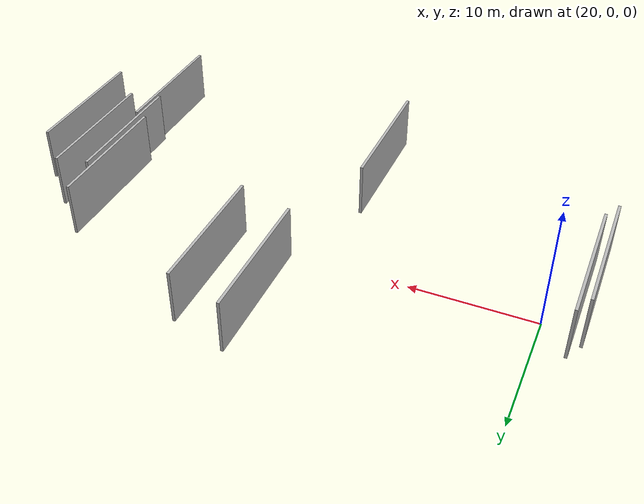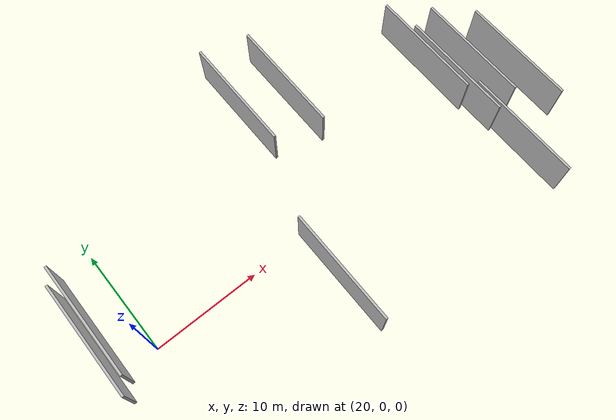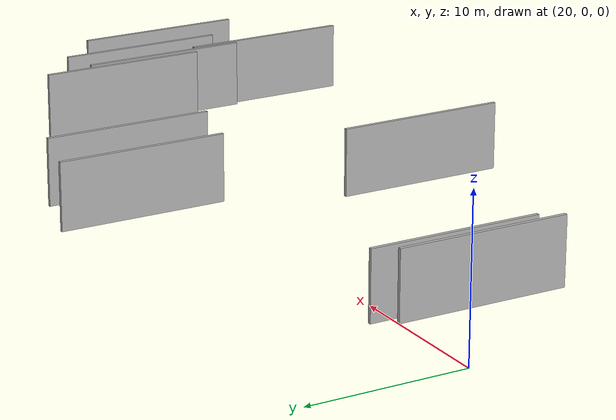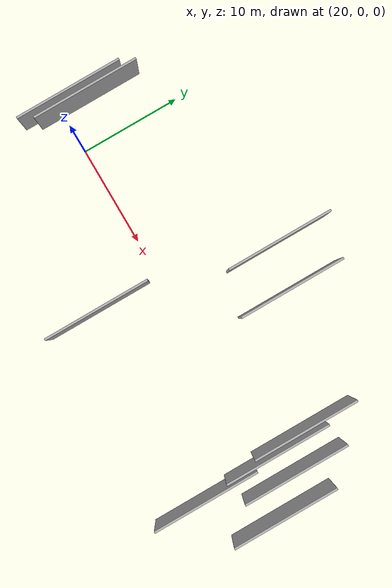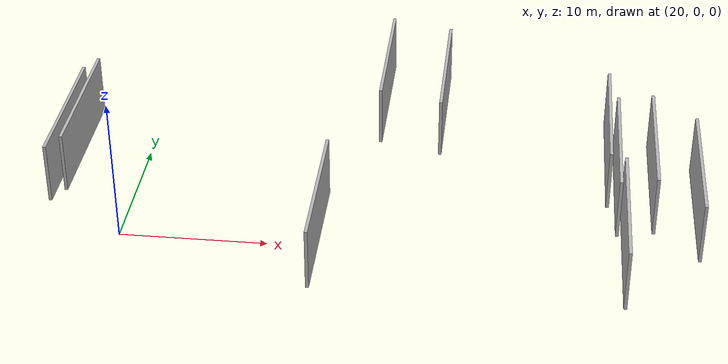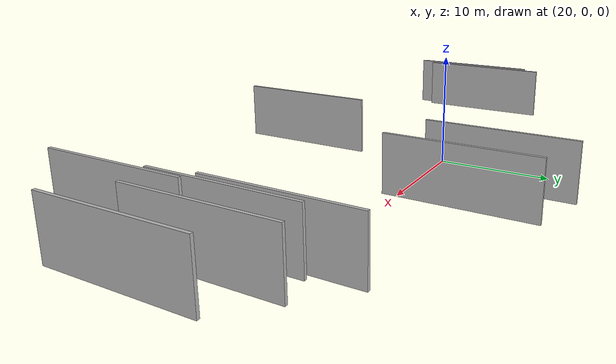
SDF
<sdf version="1.6">
 <world name="default">
  <scene>
   <sky><clouds><speed>12</speed></clouds></sky>
   <ambient>0.4 0.4 0.4 1</ambient>
   <background>0.7 0.7 0.7 1</background>
   <shadows>1</shadows>
  </scene>
  <gravity>0 0 -9.8066</gravity>
  <magnetic_field>6e-06 2.3e-05 -4.2e-05</magnetic_field>
  <physics default="0" name="default_physics" type="ode">
   <ode>
    <solver>
     <type>quick</type>
     <iters>10</iters>
     <sor>1.0</sor>
     <use_dynamic_moi_rescaling>0</use_dynamic_moi_rescaling>
    </solver>
    <constraints>
     <cfm>0</cfm>
     <erp>0.2</erp>
     <contact_max_correcting_vel>100</contact_max_correcting_vel>
     <contact_surface_layer>0.001</contact_surface_layer>
    </constraints>
   </ode>
   <max_step_size>0.004</max_step_size>
   <real_time_factor>1</real_time_factor>
   <real_time_update_rate>250</real_time_update_rate>
  </physics>
  <light name="sun" type="directional">
   <pose>0 0 10 0 0 0</pose>
   <diffuse>0.8 0.8 0.8 1</diffuse>
   <specular>0.2 0.2 0.2 1</specular>
   <attenuation>
    <range>1000</range>
    <constant>0.9</constant>
    <linear>0.01</linear>
    <quadratic>0.001</quadratic>
   </attenuation>
   <direction>-0.5 0.1 -0.9</direction>
  </light>
  <model name="grey_wall_1">
   <static>1</static>
   <pose>52.8667 -6.0500 5.0 0.000000 0.000000 1.570796</pose>
   <link name="link">
    <pose>0 0 2.00 0 0 0</pose>
    <collision name="collision"><geometry><box><size>10.00 0.2 4.00</size></box></geometry></collision>
    <visual name="visual">
     <cast_shadows>0</cast_shadows>
     <geometry><box><size>10.00 0.2 4.00</size></box></geometry>
     <material>
      <script>
       <uri>model://HANNAS_wall/materials/scripts</uri>
       <uri>model://HANNAS_wall/materials/textures</uri>
       <name>vrc/HANNAS_wall</name>
      </script>
     </material>
    </visual>
   </link>
  </model>
  <model name="grey_wall_2">
   <static>1</static>
   <pose>57.4367 -0.9543 5.0 0.000000 0.000000 1.570796</pose>
   <link name="link">
    <pose>0 0 2.00 0 0 0</pose>
    <collision name="collision"><geometry><box><size>10.00 0.2 4.00</size></box></geometry></collision>
    <visual name="visual">
     <cast_shadows>0</cast_shadows>
     <geometry><box><size>10.00 0.2 4.00</size></box></geometry>
     <material>
      <script>
       <uri>model://HANNAS_wall/materials/scripts</uri>
       <uri>model://HANNAS_wall/materials/textures</uri>
       <name>vrc/HANNAS_wall</name>
      </script>
     </material>
    </visual>
   </link>
  </model>
  <model name="grey_wall_3">
   <static>1</static>
   <pose>52.5089 1.1648 5.0 0.000000 0.000000 1.570796</pose>
   <link name="link">
    <pose>0 0 2.00 0 0 0</pose>
    <collision name="collision"><geometry><box><size>10.00 0.2 4.00</size></box></geometry></collision>
    <visual name="visual">
     <cast_shadows>0</cast_shadows>
     <geometry><box><size>10.00 0.2 4.00</size></box></geometry>
     <material>
      <script>
       <uri>model://HANNAS_wall/materials/scripts</uri>
       <uri>model://HANNAS_wall/materials/textures</uri>
       <name>vrc/HANNAS_wall</name>
      </script>
     </material>
    </visual>
   </link>
  </model>
  <model name="grey_wall_4">
   <static>1</static>
   <pose>41.0169 9.3158 5.0 0.000000 0.000000 1.570796</pose>
   <link name="link">
    <pose>0 0 2.00 0 0 0</pose>
    <collision name="collision"><geometry><box><size>10.00 0.2 4.00</size></box></geometry></collision>
    <visual name="visual">
     <cast_shadows>0</cast_shadows>
     <geometry><box><size>10.00 0.2 4.00</size></box></geometry>
     <material>
      <script>
       <uri>model://HANNAS_wall/materials/scripts</uri>
       <uri>model://HANNAS_wall/materials/textures</uri>
       <name>vrc/HANNAS_wall</name>
      </script>
     </material>
    </visual>
   </link>
  </model>
  <model name="grey_wall_5">
   <static>1</static>
   <pose>17.5186 2.6991 5.0 0.000000 0.000000 1.570796</pose>
   <link name="link">
    <pose>0 0 2.00 0 0 0</pose>
    <collision name="collision"><geometry><box><size>10.00 0.2 4.00</size></box></geometry></collision>
    <visual name="visual">
     <cast_shadows>0</cast_shadows>
     <geometry><box><size>10.00 0.2 4.00</size></box></geometry>
     <material>
      <script>
       <uri>model://HANNAS_wall/materials/scripts</uri>
       <uri>model://HANNAS_wall/materials/textures</uri>
       <name>vrc/HANNAS_wall</name>
      </script>
     </material>
    </visual>
   </link>
  </model>
  <model name="grey_wall_6">
   <static>1</static>
   <pose>51.9527 4.2436 5.0 0.000000 0.000000 1.570796</pose>
   <link name="link">
    <pose>0 0 2.00 0 0 0</pose>
    <collision name="collision"><geometry><box><size>10.00 0.2 4.00</size></box></geometry></collision>
    <visual name="visual">
     <cast_shadows>0</cast_shadows>
     <geometry><box><size>10.00 0.2 4.00</size></box></geometry>
     <material>
      <script>
       <uri>model://HANNAS_wall/materials/scripts</uri>
       <uri>model://HANNAS_wall/materials/textures</uri>
       <name>vrc/HANNAS_wall</name>
      </script>
     </material>
    </visual>
   </link>
  </model>
  <model name="grey_wall_7">
   <static>1</static>
   <pose>34.2660 -5.9076 5.0 0.000000 0.000000 1.570796</pose>
   <link name="link">
    <pose>0 0 2.00 0 0 0</pose>
    <collision name="collision"><geometry><box><size>10.00 0.2 4.00</size></box></geometry></collision>
    <visual name="visual">
     <cast_shadows>0</cast_shadows>
     <geometry><box><size>10.00 0.2 4.00</size></box></geometry>
     <material>
      <script>
       <uri>model://HANNAS_wall/materials/scripts</uri>
       <uri>model://HANNAS_wall/materials/textures</uri>
       <name>vrc/HANNAS_wall</name>
      </script>
     </material>
    </visual>
   </link>
  </model>
  <model name="grey_wall_8">
   <static>1</static>
   <pose>16.8291 1.4302 5.0 0.000000 0.000000 1.570796</pose>
   <link name="link">
    <pose>0 0 2.00 0 0 0</pose>
    <collision name="collision"><geometry><box><size>10.00 0.2 4.00</size></box></geometry></collision>
    <visual name="visual">
     <cast_shadows>0</cast_shadows>
     <geometry><box><size>10.00 0.2 4.00</size></box></geometry>
     <material>
      <script>
       <uri>model://HANNAS_wall/materials/scripts</uri>
       <uri>model://HANNAS_wall/materials/textures</uri>
       <name>vrc/HANNAS_wall</name>
      </script>
     </material>
    </visual>
   </link>
  </model>
  <model name="grey_wall_9">
   <static>1</static>
   <pose>54.7532 1.6563 5.0 0.000000 0.000000 1.570796</pose>
   <link name="link">
    <pose>0 0 2.00 0 0 0</pose>
    <collision name="collision"><geometry><box><size>10.00 0.2 4.00</size></box></geometry></collision>
    <visual name="visual">
     <cast_shadows>0</cast_shadows>
     <geometry><box><size>10.00 0.2 4.00</size></box></geometry>
     <material>
      <script>
       <uri>model://HANNAS_wall/materials/scripts</uri>
       <uri>model://HANNAS_wall/materials/textures</uri>
       <name>vrc/HANNAS_wall</name>
      </script>
     </material>
    </visual>
   </link>
  </model>
  <model name="grey_wall_10">
   <static>1</static>
   <pose>36.9782 10.4492 5.0 0.000000 0.000000 1.570796</pose>
   <link name="link">
    <pose>0 0 2.00 0 0 0</pose>
    <collision name="collision"><geometry><box><size>10.00 0.2 4.00</size></box></geometry></collision>
    <visual name="visual">
     <cast_shadows>0</cast_shadows>
     <geometry><box><size>10.00 0.2 4.00</size></box></geometry>
     <material>
      <script>
       <uri>model://HANNAS_wall/materials/scripts</uri>
       <uri>model://HANNAS_wall/materials/textures</uri>
       <name>vrc/HANNAS_wall</name>
      </script>
     </material>
    </visual>
   </link>
  </model>
 </world>
</sdf>
